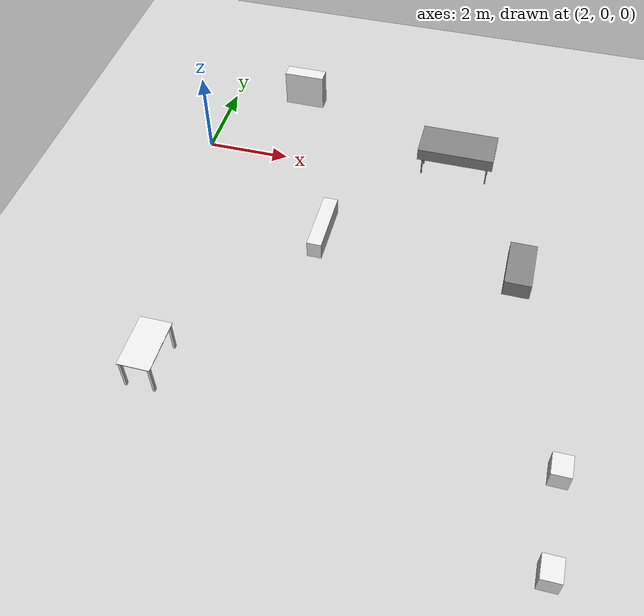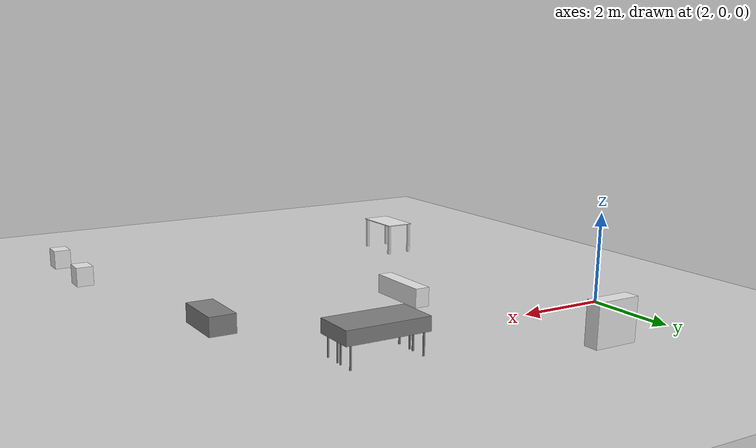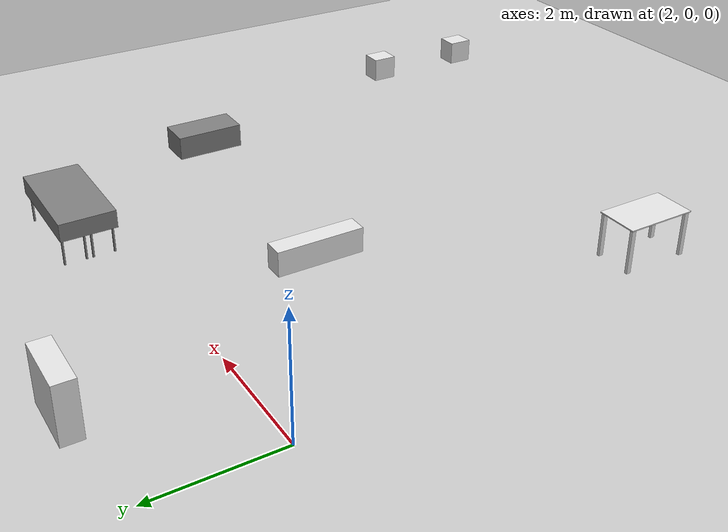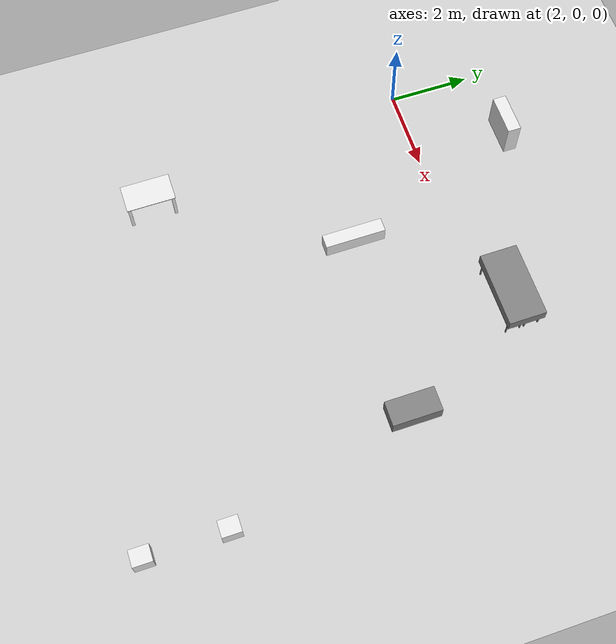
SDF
<sdf version="1.6">
 <world name="rwc2015">
  <light name="sun" type="directional">
   <direction>0.5 0.1 -0.9</direction>
   <pose>0 0 10 0 0 0</pose>
   <specular>0.2 0.2 0.2 1</specular>
   <diffuse>0.8 0.8 0.8 1</diffuse>
   <attenuation>
    <range>1000</range>
    <quadratic>0.001</quadratic>
    <constant>0.9</constant>
    <linear>0.01</linear>
   </attenuation>
  </light>
  <model name="initial_pose" type="waypoint"><static>true</static></model>
  <model name="initial_pose_door_B" type="waypoint"><static>true</static></model>
  <model name="initial_pose_door_A" type="waypoint"><pose>0 -8.35 0 0 0 0.0</pose><static>true</static></model>
  <model name="exit_door_B1" type="waypoint"><pose>-1.0 0 0 0 0 3.1415</pose><static>true</static></model>
  <model name="exit_door_B2" type="waypoint"><pose>-2.0 0 0 0 0 3.1415</pose><static>true</static></model>
  <model name="exit_door_B3" type="waypoint"><pose>1.0 0 0 0 0 3.1415</pose><static>true</static></model>
  <model name="exit_door_A1" type="waypoint"><pose>-1.0 -8.35 0 0 0 3.1415</pose><static>true</static></model>
  <model name="exit_door_A2" type="waypoint"><pose>-2.0 -8.35 0 0 0 3.1415</pose><static>true</static></model>
  <model name="exit_door_A3" type="waypoint"><pose>1.0 -8.35 0 0 0 3.1415</pose><static>true</static></model>
  <model name="entry_point_B" type="waypoint"><pose>1.0 0 0 0 0 0</pose><static>true</static></model>
  <model name="entry_point_A" type="waypoint"><pose>1.0 -8.35 0 0 0 0</pose><static>true</static></model>
  <model name="navigation1" type="waypoint"><pose>6.8 -5 0 0 0 1.582</pose><static>true</static></model>
  <model name="navigation2" type="waypoint"><pose>9.8 0.65 0 0 0 3.1415</pose><static>true</static></model>
  <model name="navigation3" type="waypoint"><pose>5.39 0 0 0 0 3.1415</pose><static>true</static></model>
  <model name="navigation4" type="waypoint"><pose>4.6 0 0 0 0 0</pose><static>true</static></model>
  <model name="rips1" type="waypoint"><pose>8.0 -1.5 0 0 0 -1.57</pose><static>true</static></model>
  <model name="rips2" type="waypoint"><pose>8.0 -1.5 0 0 0 1.57</pose><static>true</static></model>
  <model name="rips1" type="waypoint"><pose>8.0 -3.5 0 0 0 1.57</pose><static>true</static></model>
  <model name="bookcase_waypoint" type="waypoint"><pose>2.285 -8.414 0 0 0 0</pose><static>true</static></model>
  <model name="dinnertable_waypoint" type="waypoint">
   <pose>6.271 0.613 0 0 0 0</pose>
   <static>true</static>
  </model>
  <model name="granny_waypoint" type="waypoint">
   <pose>3.062 -5.214 0 0 0 -1.57</pose>
   <static>true</static>
  </model>
  <model name="gpsr_meeting_point" type="waypoint">
   <pose>3.25 -7.0 0 0 0 -1.57</pose>
   <static>true</static>
  </model>
  <model name="kitchen" type="room">
   <link name="in">
    <virtual_volume name="in_vv"><geometry><box><size>4.1 4.2 0</size></box></geometry></virtual_volume>
   </link>
   <pose>2.95 0 0 0 0 0</pose>
   <static>true</static>
  </model>
  <model name="livingroom" type="room">
   <link name="in">
    <virtual_volume name="in_vv"><geometry><box><size>5.6 7.85 0</size></box></geometry></virtual_volume>
   </link>
   <pose>8.5 -1.825 0 0 0 0</pose>
   <static>true</static>
  </model>
  <model name="bedroom" type="room">
   <link name="in">
    <virtual_volume name="in_vv"><geometry><box><size>5.6 2.85 0</size></box></geometry></virtual_volume>
   </link>
   <pose>8.5 -7.825 0 0 0 0</pose>
   <static>true</static>
  </model>
  <model name="hallway" type="room">
   <link name="in">
    <virtual_volume name="in_vv"><geometry><box><size>4.15 6.95 0</size></box></geometry></virtual_volume>
   </link>
   <pose>2.975 -6.175 0 0 0 0</pose>
   <static>true</static>
  </model>
  <model name="person_rec_learning" type="waypoint">
   <pose>7.316 -3.636 0 0 0 -1.578</pose>
   <static>true</static>
  </model>
  <model name="person_rec_living_room_1" type="waypoint">
   <pose>8.533 -4.677 0 0 0 1.562</pose>
   <static>true</static>
  </model>
  <model name="person_rec_living_room_2" type="waypoint">
   <pose>7.773 -3.956 0 0 0 1.588</pose>
   <static>true</static>
  </model>
  <model name="person_rec_living_room_3" type="waypoint">
   <pose>6.598 -2.748 0 0 0 0.96</pose>
   <static>true</static>
  </model>
  <include><name>floor</name><uri>model://ground_plane</uri></include>
  <include>
   <pose>3.12 -6.725 0 0 0 0</pose>
   <name>hallwaytable</name>
   <uri>model://rwc2015/hallwaytable</uri>
  </include>
  <include>
   <pose>11.425 -9.135 0 0 0 0</pose>
   <name>left_bedside_table</name>
   <uri>model://rwc2015/bedstand</uri>
  </include>
  <include>
   <pose>11.425 -7.165 0 0 0 0</pose>
   <name>right_bedside_table</name>
   <uri>model://rwc2015/bedstand</uri>
  </include>
  <include><pose>5.57 -2.315 0 0 0 3.1415</pose><name>bar</name><uri>model://rwc2015/bar</uri></include>
  <include>
   <pose>10.135 -2.48 0 0 0 0</pose>
   <name>couchtable</name>
   <uri>model://rwc2015/couchtable</uri>
  </include>
  <include>
   <pose>8.185 0.6825 0 0 0 1.571</pose>
   <name>dinnertable</name>
   <uri>model://rwc2015/dinnertable</uri>
  </include>
  <include><pose>3.875 2.28 0 0 0 1.571</pose><name>cupboard</name><uri>model://rwc2015/cupboard</uri></include>
  <physics type="ode">
   <real_time_update_rate>333.0</real_time_update_rate>
   <max_step_size>0.003</max_step_size>
   <ode><constraints><cfm>0.0001</cfm></constraints><solver><type>quick</type><iters>100</iters></solver></ode>
  </physics>
 </world>
</sdf>

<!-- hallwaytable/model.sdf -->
<sdf version="1.6">
  <model name="rwc2015/hallwaytable">
    <link name="1_link">
      <collision name="1_col">
        <geometry>
          <box>
            <size>0.7 1.2 0.02</size>
          </box>
        </geometry>
      </collision>
      <visual name="1_vis">
        <geometry>
          <box>
            <size>0.7 1.2 0.02</size>
          </box>
        </geometry>
        <material>
          <ambient>0.9 0.9 0.9 1</ambient>
        </material>
      </visual>
      <pose>0.0 0.0 0.76 0 0 0</pose>
    </link>
    <link name="2_link">
      <collision name="2_col">
        <geometry>
          <box>
            <size>0.05 0.075 0.76</size>
          </box>
        </geometry>
      </collision>
      <visual name="2_vis">
        <geometry>
          <box>
            <size>0.05 0.075 0.76</size>
          </box>
        </geometry>
        <material>
          <ambient>0.9 0.9 0.9 1</ambient>
        </material>
      </visual>
      <pose>-0.305 -0.5425 0.38 0 0 0</pose>
    </link>
    <link name="3_link">
      <collision name="3_col">
        <geometry>
          <box>
            <size>0.05 0.075 0.76</size>
          </box>
        </geometry>
      </collision>
      <visual name="3_vis">
        <geometry>
          <box>
            <size>0.05 0.075 0.76</size>
          </box>
        </geometry>
        <material>
          <ambient>0.9 0.9 0.9 1</ambient>
        </material>
      </visual>
      <pose>-0.305 0.5425 0.38 0 0 0</pose>
    </link>
    <link name="4_link">
      <collision name="4_col">
        <geometry>
          <box>
            <size>0.05 0.075 0.76</size>
          </box>
        </geometry>
      </collision>
      <visual name="4_vis">
        <geometry>
          <box>
            <size>0.05 0.075 0.76</size>
          </box>
        </geometry>
        <material>
          <ambient>0.9 0.9 0.9 1</ambient>
        </material>
      </visual>
      <pose>0.305 -0.5425 0.38 0 0 0</pose>
    </link>
    <link name="5_link">
      <collision name="5_col">
        <geometry>
          <box>
            <size>0.05 0.075 0.76</size>
          </box>
        </geometry>
      </collision>
      <visual name="5_vis">
        <geometry>
          <box>
            <size>0.05 0.075 0.76</size>
          </box>
        </geometry>
        <material>
          <ambient>0.9 0.9 0.9 1</ambient>
        </material>
      </visual>
      <pose>0.305 0.5425 0.38 0 0 0</pose>
    </link>
    <link name="in_front_of">
      <virtual_volume name="in_front_of_vv">
        <geometry>
          <box>
            <size>0.3 1.85 1</size>
          </box>
        </geometry>
        <pose>0.0 -0.325 0.5 0 0 0</pose>
      </virtual_volume>
    </link>
    <link name="in_front_of_pos2">
      <virtual_volume name="in_front_of_pos2_vv">
        <geometry>
          <box>
            <size>0.3 1.85 1</size>
          </box>
        </geometry>
        <pose>0.0 0.325 0.5 0 0 0</pose>
      </virtual_volume>
    </link>
    <static>true</static>
  </model>
</sdf>

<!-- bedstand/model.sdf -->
<sdf version="1.6">
  <model name="rwc2015/bedstand">
    <link name="1_link">
      <collision name="1_col">
        <geometry>
          <box>
            <size>0.4 0.47 0.455</size>
          </box>
        </geometry>
        <pose>0.0 0.0 0.2275 0 0 0</pose>
      </collision>
      <visual name="1_vis">
        <geometry>
          <box>
            <size>0.4 0.47 0.455</size>
          </box>
        </geometry>
        <material>
          <ambient>0.9 0.9 0.9 1</ambient>
        </material>
        <pose>0.0 0.0 0.2275 0 0 0</pose>
      </visual>
      <pose>0 0 0 0 0 0</pose>
    </link>
    <link name="in_front_of">
      <virtual_volume name="in_front_of_vv">
        <geometry>
          <box>
            <size>0.8 1.0 1</size>
          </box>
        </geometry>
        <pose>-0.6 0.0 0.5 0 0 0</pose>
      </virtual_volume>
    </link>
    <static>true</static>
  </model>
</sdf>

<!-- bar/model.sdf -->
<sdf version="1.6">
  <model name="rwc2015/bar">
    <link name="1_link">
      <collision name="1_col">
        <geometry>
          <box>
            <size>0.34 1.49 0.43</size>
          </box>
        </geometry>
      </collision>
      <visual name="1_vis">
        <geometry>
          <box>
            <size>0.34 1.49 0.43</size>
          </box>
        </geometry>
        <material>
          <ambient>0.9 0.9 0.9 1</ambient>
        </material>
      </visual>
      <pose>0.0 0.0 0.215 0 0 0</pose>
    </link>
    <link name="in_front_of">
      <virtual_volume name="in_front_of_vv">
        <geometry>
          <box>
            <size>0.8 0.3 1</size>
          </box>
        </geometry>
        <pose>-0.6 0.0 0.5 0 0 0</pose>
      </virtual_volume>
    </link>
    <static>true</static>
  </model>
</sdf>

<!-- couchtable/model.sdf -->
<sdf version="1.6">
  <model name="rwc2015/couchtable">
    <link name="1_link">
      <collision name="1_col">
        <geometry>
          <box>
            <size>0.6 1.2 0.42</size>
          </box>
        </geometry>
      </collision>
      <visual name="1_vis">
        <geometry>
          <box>
            <size>0.6 1.2 0.42</size>
          </box>
        </geometry>
        <material>
          <ambient>0.5 0.5 0.5 1</ambient>
        </material>
      </visual>
      <pose>0.0 0.0 0.21 0 0 0</pose>
    </link>
    <link name="in_front_of">
      <virtual_volume name="in_front_of_vv">
        <geometry>
          <box>
            <size>0.3 1.3 1</size>
          </box>
        </geometry>
        <pose>0.0 -0.65 0.5 0 0 0</pose>
      </virtual_volume>
    </link>
    <static>true</static>
  </model>
</sdf>

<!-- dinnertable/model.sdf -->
<sdf version="1.6">
  <model name="rwc2015/dinnertable">
    <link name="1_link">
      <collision name="1_col">
        <geometry>
          <box>
            <size>0.915 1.83 0.3</size>
          </box>
        </geometry>
      </collision>
      <visual name="1_vis">
        <geometry>
          <box>
            <size>0.915 1.83 0.3</size>
          </box>
        </geometry>
        <material>
          <ambient>0.5 0.5 0.5 1</ambient>
        </material>
      </visual>
      <pose>0.0 0.0 0.625 0 0 0</pose>
    </link>
    <link name="2_link">
      <collision name="2_col">
        <geometry>
          <box>
            <size>0.03 0.03 0.75</size>
          </box>
        </geometry>
      </collision>
      <visual name="2_vis">
        <geometry>
          <box>
            <size>0.03 0.03 0.75</size>
          </box>
        </geometry>
        <material>
          <ambient>0.5 0.5 0.5 1</ambient>
        </material>
      </visual>
      <pose>-0.4025 -0.79 0.375 0 0 0</pose>
    </link>
    <link name="3_link">
      <collision name="3_col">
        <geometry>
          <box>
            <size>0.03 0.03 0.75</size>
          </box>
        </geometry>
      </collision>
      <visual name="3_vis">
        <geometry>
          <box>
            <size>0.03 0.03 0.75</size>
          </box>
        </geometry>
        <material>
          <ambient>0.5 0.5 0.5 1</ambient>
        </material>
      </visual>
      <pose>-0.4025 0.79 0.375 0 0 0</pose>
    </link>
    <link name="4_link">
      <collision name="4_col">
        <geometry>
          <box>
            <size>0.03 0.03 0.75</size>
          </box>
        </geometry>
      </collision>
      <visual name="4_vis">
        <geometry>
          <box>
            <size>0.03 0.03 0.75</size>
          </box>
        </geometry>
        <material>
          <ambient>0.5 0.5 0.5 1</ambient>
        </material>
      </visual>
      <pose>0.4025 -0.79 0.375 0 0 0</pose>
    </link>
    <link name="5_link">
      <collision name="5_col">
        <geometry>
          <box>
            <size>0.03 0.03 0.75</size>
          </box>
        </geometry>
      </collision>
      <visual name="5_vis">
        <geometry>
          <box>
            <size>0.03 0.03 0.75</size>
          </box>
        </geometry>
        <material>
          <ambient>0.5 0.5 0.5 1</ambient>
        </material>
      </visual>
      <pose>0.4025 0.79 0.375 0 0 0</pose>
    </link>
    <link name="6_link">
      <collision name="6_col">
        <geometry>
          <box>
            <size>0.03 0.03 0.75</size>
          </box>
        </geometry>
      </collision>
      <visual name="6_vis">
        <geometry>
          <box>
            <size>0.03 0.03 0.75</size>
          </box>
        </geometry>
        <material>
          <ambient>0.5 0.5 0.5 1</ambient>
        </material>
      </visual>
      <pose>-0.055 -0.79 0.375 0 0 0</pose>
    </link>
    <link name="7_link">
      <collision name="7_col">
        <geometry>
          <box>
            <size>0.03 0.03 0.75</size>
          </box>
        </geometry>
      </collision>
      <visual name="7_vis">
        <geometry>
          <box>
            <size>0.03 0.03 0.75</size>
          </box>
        </geometry>
        <material>
          <ambient>0.5 0.5 0.5 1</ambient>
        </material>
      </visual>
      <pose>-0.055 0.79 0.375 0 0 0</pose>
    </link>
    <link name="8_link">
      <collision name="8_col">
        <geometry>
          <box>
            <size>0.03 0.03 0.75</size>
          </box>
        </geometry>
      </collision>
      <visual name="8_vis">
        <geometry>
          <box>
            <size>0.03 0.03 0.75</size>
          </box>
        </geometry>
        <material>
          <ambient>0.5 0.5 0.5 1</ambient>
        </material>
      </visual>
      <pose>0.055 -0.79 0.375 0 0 0</pose>
    </link>
    <link name="9_link">
      <collision name="9_col">
        <geometry>
          <box>
            <size>0.03 0.03 0.75</size>
          </box>
        </geometry>
      </collision>
      <visual name="9_vis">
        <geometry>
          <box>
            <size>0.03 0.03 0.75</size>
          </box>
        </geometry>
        <material>
          <ambient>0.5 0.5 0.5 1</ambient>
        </material>
      </visual>
      <pose>0.055 0.79 0.375 0 0 0</pose>
    </link>
    <link name="in_front_of">
      <virtual_volume name="in_front_of_vv">
        <geometry>
          <box>
            <size>0.3 1.7 1</size>
          </box>
        </geometry>
        <pose>0.0 0.85 0.5 0 0 0</pose>
      </virtual_volume>
    </link>
    <link name="in_front_of_pos2">
      <virtual_volume name="in_front_of_pos2_vv">
        <geometry>
          <box>
            <size>0.3 1.7 1</size>
          </box>
        </geometry>
        <pose>0.0 -0.85 0.5 0 0 0</pose>
      </virtual_volume>
    </link>
    <link name="in_front_of_pos3">
      <virtual_volume name="in_front_of_pos3_vv">
        <geometry>
          <box>
            <size>1.15 1.0 1</size>
          </box>
        </geometry>
        <pose>0.425 -1.5 0.5 0 0 0</pose>
      </virtual_volume>
    </link>
    <static>true</static>
  </model>
</sdf>

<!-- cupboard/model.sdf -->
<sdf version="1.6">
  <model name="rwc2015/cupboard">
    <link name="1_link">
      <collision name="1_col">
        <geometry>
          <box>
            <size>0.33 1.0 0.93</size>
          </box>
        </geometry>
      </collision>
      <visual name="1_vis">
        <geometry>
          <box>
            <size>0.33 1.0 0.93</size>
          </box>
        </geometry>
        <material>
          <ambient>0.9 0.9 0.9 1</ambient>
        </material>
      </visual>
      <pose>0.0 0.0 0.465 0 0 0</pose>
    </link>
    <link name="in_front_of">
      <virtual_volume name="in_front_of_vv">
        <geometry>
          <box>
            <size>0.5 0.3 1</size>
          </box>
        </geometry>
        <pose>-0.55 0.0 0.5 0 0 0</pose>
      </virtual_volume>
    </link>
    <static>true</static>
  </model>
</sdf>
